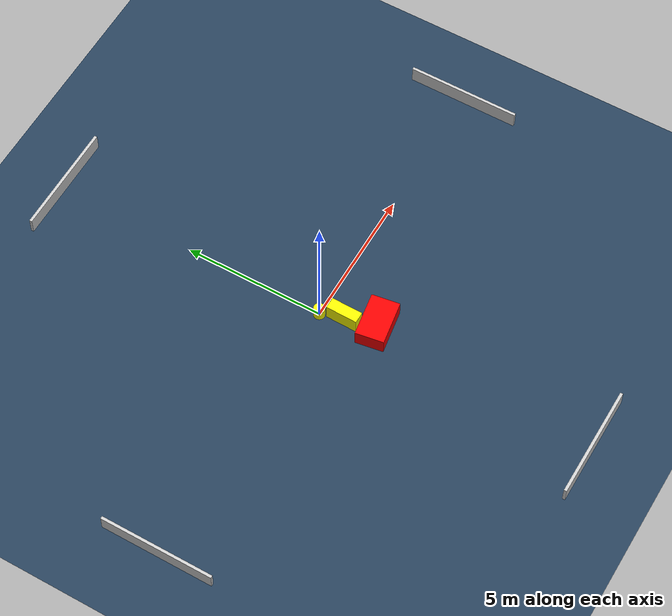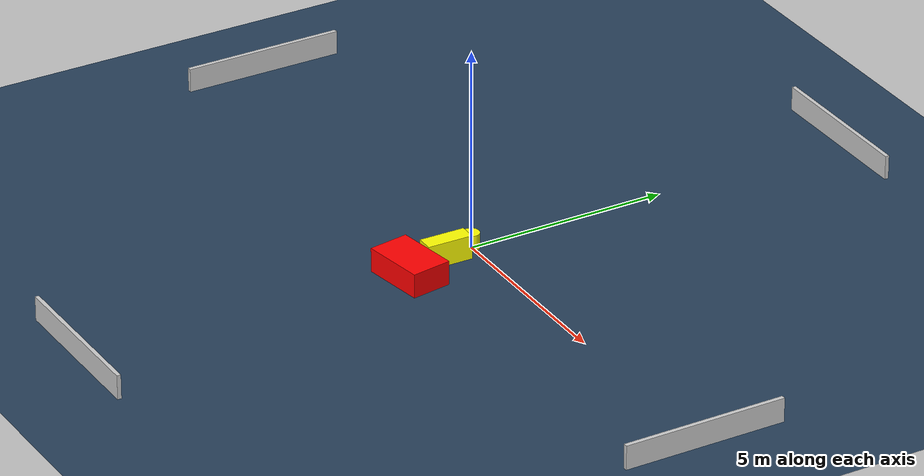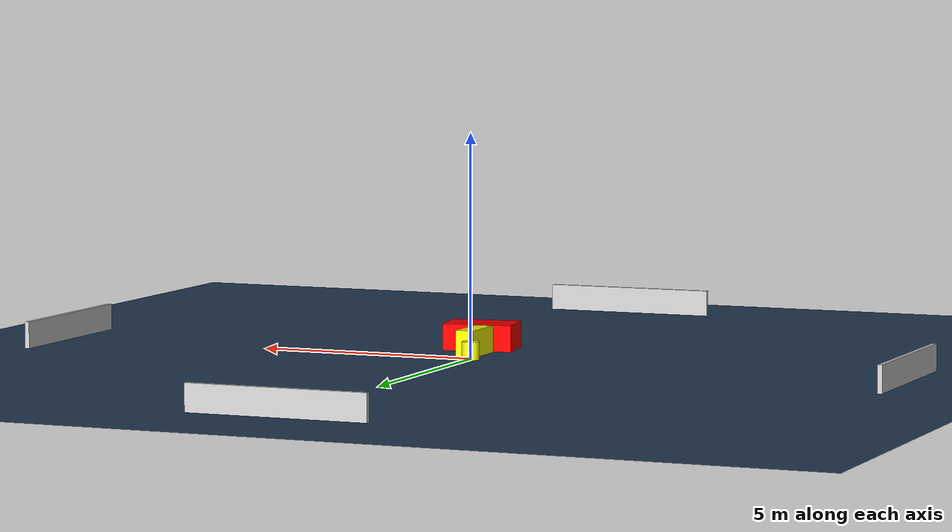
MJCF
<?xml version="1.0" ?>
<mujoco model="generated_environment">
  <option timestep="0.01" integrator="RK4" cone="elliptic"/>
  <default>
    <geom density="1"/>
  </default>
  <asset>
    <texture builtin="gradient" height="3072" name="skybox" rgb1="0.3 0.5 0.7" rgb2="0 0 0" type="skybox" width="512"/>
    <texture builtin="checker" height="300" name="groundplane" rgb1="0.2 0.3 0.4" rgb2="0.1 0.2 0.3" type="2d" width="300"/>
    <material name="groundplane" reflectance="0.2" texrepeat="5 5" texture="groundplane"/>
  </asset>
  <worldbody>
    <light dir="0 0 -1" directional="true" pos="0 0 1.5"/>
    <geom condim="3" friction="0.5 0.005 0.001" material="groundplane" name="floor" pos="0 0 0" size="0 0 0.05" type="plane"/>
    <body name="walls">
      <geom name="wall_1" condim="4" pos="-10.0 0.0 0.3" rgba="0.800000011920929 0.800000011920929 0.800000011920929 1.0" size="0.05 2.0 0.3" type="box"/>
      <geom name="wall_2" condim="4" pos="10.0 0.0 0.3" rgba="0.800000011920929 0.800000011920929 0.800000011920929 1.0" size="0.05 2.0 0.3" type="box"/>
      <geom name="wall_3" condim="4" pos="0.0 -10.0 0.3" rgba="0.800000011920929 0.800000011920929 0.800000011920929 1.0" size="2.0 0.05 0.3" type="box"/>
      <geom name="wall_4" condim="4" pos="0.0 10.0 0.3" rgba="0.800000011920929 0.800000011920929 0.800000011920929 1.0" size="2.0 0.05 0.3" type="box"/>
    </body>
    <body name="robot">
      <joint name="joint_x" type="slide" pos="0 0 0" axis="1 0 0"/>
      <joint name="joint_y" type="slide" pos="0 0 0" axis="0 1 0"/>
      <geom name="robot" type="cylinder" pos="0.0 0.0 0.2" size="0.2 0.2 0.0" mass="5.0" friction="1.0 0.005 0.0001" condim="4" rgba="1.0 1.0 0.0 1.0"/>
    </body>
    <body name="obstacle_1_movable">
      <geom name="obstacle_1_movable" condim="4" pos="0.24129922030657272 -0.7984893659767397 0.3" euler="0 0 179.06242678691675" friction="0.0 0.005 0.001" rgba="1.0 1.0 0.0 1.0" size="0.2033578714653773 0.5613135174796611 0.3" type="box" mass="0.1"/>
      <joint type="free"/>
    </body>
    <body name="obstacle_2_static">
      <geom name="obstacle_2_static" condim="4" pos="0.515840598067161 -1.894447611230964 0.3" euler="0 0 8.96475771594412" friction="0.0 0.005 0.001" rgba="1.0 0.0 0.0 1.0" size="0.7873112240627056 0.4999445178500666 0.3" type="box"/>
    </body>
  </worldbody>
  <actuator>
    <motor name="actuator_x" joint="joint_x" gear="1" ctrlrange="-1 1"/>
    <motor name="actuator_y" joint="joint_y" gear="1" ctrlrange="-1 1"/>
  </actuator>
</mujoco>
